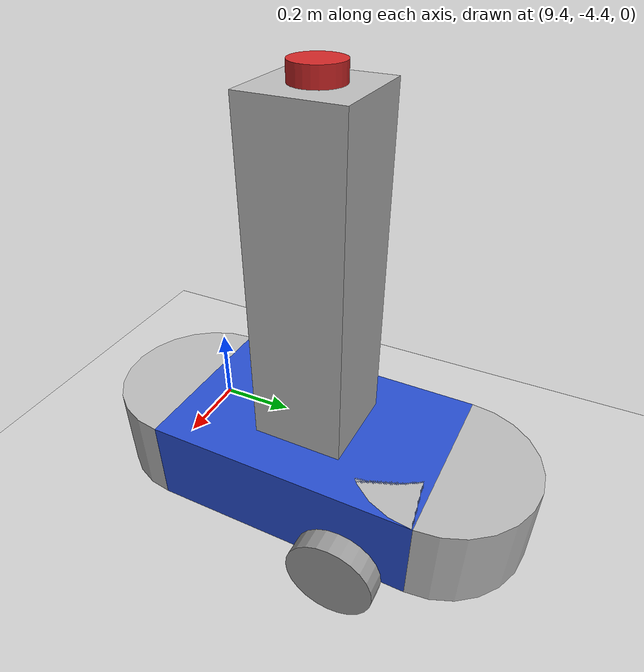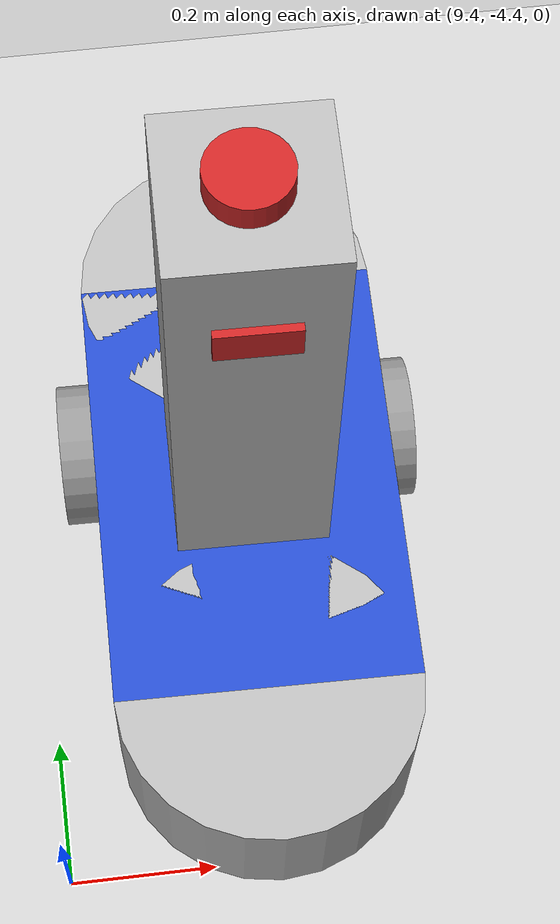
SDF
<sdf version="1.7">
 <world name="default">
  <model name="ground_plane">
   <static>1</static>
   <link name="link">
    <collision name="collision">
     <geometry><plane><normal>0 0 1</normal><size>100 100</size></plane></geometry>
     <surface>
      <contact><collide_bitmask>65535</collide_bitmask></contact>
      <friction><ode><mu>100</mu><mu2>50</mu2></ode></friction>
     </surface>
    </collision>
    <visual name="visual">
     <cast_shadows>0</cast_shadows>
     <geometry><plane><normal>0 0 1</normal><size>100 100</size></plane></geometry>
     <material>
      <script><uri>file://media/materials/scripts/gazebo.material</uri><name>Gazebo/Grey</name></script>
     </material>
    </visual>
   </link>
  </model>
  <model name="my_robot">
   <link name="base_footprint">
    <inertial>
     <pose>0.005384 0 0.360381 0 -0 0</pose>
     <mass>20.71</mass>
     <inertia>
      <ixx>2.48578</ixx>
      <ixy>0</ixy>
      <ixz>0.0260025</ixz>
      <iyy>2.85644</iyy>
      <iyz>0</iyz>
      <izz>2.3396</izz>
     </inertia>
    </inertial>
    <collision name="base_footprint_fixed_joint_lump__base_link_collision">
     <pose>0 0 0.2 0 -0 0</pose>
     <geometry><box><size>0.6 0.4 0.2</size></box></geometry>
    </collision>
    <collision name="base_footprint_fixed_joint_lump__back_bumper_link_collision_1">
     <pose>-0.3 0 0.2 0 -0 0</pose>
     <geometry><box><size>0.4 0.4 0.2</size></box></geometry>
    </collision>
    <collision name="base_footprint_fixed_joint_lump__caster_wheel_link_collision_2">
     <pose>0.2 0 0.05 0 -0 0</pose>
     <geometry><sphere><radius>0.05</radius></sphere></geometry>
     <surface><friction><ode><mu>0.1</mu><mu2>0.1</mu2></ode></friction></surface>
    </collision>
    <collision name="base_footprint_fixed_joint_lump__front_bumper_link_collision_3">
     <pose>0.3 0 0.2 0 -0 0</pose>
     <geometry><box><size>0.4 0.4 0.2</size></box></geometry>
    </collision>
    <collision name="base_footprint_fixed_joint_lump__tower_link_collision_4">
     <pose>0 0 1 0 -0 0</pose>
     <geometry><box><size>0.2 0.2 0.7</size></box></geometry>
    </collision>
    <collision name="base_footprint_fixed_joint_lump__camera_link_collision_5">
     <pose>0.105 0 0.86 0 -0 0</pose>
     <geometry><box><size>0.01 0.1 0.05</size></box></geometry>
    </collision>
    <collision name="base_footprint_fixed_joint_lump__lidar_link_collision_6">
     <pose>0 0 1.01 0 -0 0</pose>
     <geometry><cylinder><length>0.05</length><radius>0.05</radius></cylinder></geometry>
    </collision>
    <visual name="base_footprint_fixed_joint_lump__base_link_visual">
     <pose>0 0 0.2 0 -0 0</pose>
     <geometry><box><size>0.6 0.4 0.2</size></box></geometry>
     <material>
      <script><name>Gazebo/Blue</name><uri>file://media/materials/scripts/gazebo.material</uri></script>
     </material>
    </visual>
    <visual name="base_footprint_fixed_joint_lump__back_bumper_link_visual_1">
     <pose>-0.3 0 0.2 0 -0 0</pose>
     <geometry><cylinder><length>0.2</length><radius>0.2</radius></cylinder></geometry>
    </visual>
    <visual name="base_footprint_fixed_joint_lump__caster_wheel_link_visual_2">
     <pose>0.2 0 0.05 0 -0 0</pose>
     <geometry><sphere><radius>0.05</radius></sphere></geometry>
     <material>
      <script><name>Gazebo/Grey</name><uri>file://media/materials/scripts/gazebo.material</uri></script>
     </material>
    </visual>
    <visual name="base_footprint_fixed_joint_lump__front_bumper_link_visual_3">
     <pose>0.3 0 0.2 0 -0 0</pose>
     <geometry><cylinder><length>0.2</length><radius>0.2</radius></cylinder></geometry>
    </visual>
    <visual name="base_footprint_fixed_joint_lump__tower_link_visual_4">
     <pose>0 0 0.65 0 -0 0</pose>
     <geometry><box><size>0.2 0.2 0.7</size></box></geometry>
    </visual>
    <visual name="base_footprint_fixed_joint_lump__camera_link_visual_5">
     <pose>0.105 0 0.86 0 -0 0</pose>
     <geometry><box><size>0.01 0.1 0.05</size></box></geometry>
     <material>
      <script><name>Gazebo/Red</name><uri>file://media/materials/scripts/gazebo.material</uri></script>
     </material>
    </visual>
    <visual name="base_footprint_fixed_joint_lump__lidar_link_visual_6">
     <pose>0 0 1.01 0 -0 0</pose>
     <geometry><cylinder><length>0.05</length><radius>0.05</radius></cylinder></geometry>
     <material>
      <script><name>Gazebo/Red</name><uri>file://media/materials/scripts/gazebo.material</uri></script>
     </material>
    </visual>
    <sensor name="imu_sensor" type="imu">
     <always_on>1</always_on>
     <update_rate>100</update_rate>
     <visualize>1</visualize>
     <topic>__default_topic__</topic>
     <plugin name="imu_plugin" filename="libgazebo_ros_imu_sensor.so">
      <topicName>imu</topicName>
      <bodyName>imu_link</bodyName>
      <updateRateHZ>10.0</updateRateHZ>
      <gaussianNoise>0.0</gaussianNoise>
      <xyzOffset>0 0 0</xyzOffset>
      <rpyOffset>0 0 0</rpyOffset>
      <frameName>imu_link</frameName>
      <initialOrientationAsReference>0</initialOrientationAsReference>
     </plugin>
     <pose>0.1 0 0.15 0 -0 0</pose>
    </sensor>
    <sensor name="camera_sensor" type="camera">
     <visualize>1</visualize>
     <update_rate>10</update_rate>
     <plugin name="camera_controller" filename="libgazebo_ros_camera.so">
      <frame_name>camera_link_optical</frame_name>
     </plugin>
     <pose>0.105 0 0.86 0 -0 0</pose>
     <camera>
      <horizontal_fov>1.047</horizontal_fov>
      <image><width>320</width><height>240</height></image>
      <clip><near>0.1</near><far>100</far></clip>
     </camera>
    </sensor>
    <sensor name="laser" type="ray">
     <visualize>1</visualize>
     <update_rate>10</update_rate>
     <ray>
      <scan>
       <horizontal>
        <samples>360</samples>
        <min_angle>-3.14</min_angle>
        <max_angle>3.14</max_angle>
        <resolution>1</resolution>
       </horizontal>
       <vertical><samples>1</samples><min_angle>0</min_angle><max_angle>0</max_angle></vertical>
      </scan>
      <range><min>0.3</min><max>12</max></range>
     </ray>
     <plugin name="laser_controller" filename="libgazebo_ros_ray_sensor.so">
      <ros><argument>--remap ~/out:=scan</argument></ros>
      <output_type>sensor_msgs/LaserScan</output_type>
      <frame_name>lidar_link</frame_name>
     </plugin>
     <pose>0 0 1.01 0 -0 0</pose>
    </sensor>
   </link>
   <joint name="base_left_wheel_joint" type="revolute">
    <pose relative_to="base_footprint">-0.15 0.225 0.1 0 -0 0</pose>
    <parent>base_footprint</parent>
    <child>left_wheel_link</child>
    <axis>
     <xyz>0 1 0</xyz>
     <limit><lower>-1e+16</lower><upper>1e+16</upper></limit>
     <dynamics><spring_reference>0</spring_reference><spring_stiffness>0</spring_stiffness></dynamics>
    </axis>
   </joint>
   <link name="left_wheel_link">
    <pose relative_to="base_left_wheel_joint">0 0 0 0 -0 0</pose>
    <inertial>
     <pose>0 0 0 1.5708 -0 0</pose>
     <mass>1</mass>
     <inertia><ixx>0.0108333</ixx><ixy>0</ixy><ixz>0</ixz><iyy>0.0108333</iyy><iyz>0</iyz><izz>0.02</izz></inertia>
    </inertial>
    <collision name="left_wheel_link_collision">
     <pose>0 0 0 1.5708 -0 0</pose>
     <geometry><cylinder><length>0.05</length><radius>0.1</radius></cylinder></geometry>
    </collision>
    <visual name="left_wheel_link_visual">
     <pose>0 0 0 1.5708 -0 0</pose>
     <geometry><cylinder><length>0.05</length><radius>0.1</radius></cylinder></geometry>
     <material>
      <script><name>Gazebo/Grey</name><uri>file://media/materials/scripts/gazebo.material</uri></script>
     </material>
    </visual>
   </link>
   <joint name="base_right_wheel_joint" type="revolute">
    <pose relative_to="base_footprint">-0.15 -0.225 0.1 0 -0 0</pose>
    <parent>base_footprint</parent>
    <child>right_wheel_link</child>
    <axis>
     <xyz>0 1 0</xyz>
     <limit><lower>-1e+16</lower><upper>1e+16</upper></limit>
     <dynamics><spring_reference>0</spring_reference><spring_stiffness>0</spring_stiffness></dynamics>
    </axis>
   </joint>
   <link name="right_wheel_link">
    <pose relative_to="base_right_wheel_joint">0 0 0 0 -0 0</pose>
    <inertial>
     <pose>0 0 0 1.5708 -0 0</pose>
     <mass>1</mass>
     <inertia><ixx>0.0108333</ixx><ixy>0</ixy><ixz>0</ixz><iyy>0.0108333</iyy><iyz>0</iyz><izz>0.02</izz></inertia>
    </inertial>
    <collision name="right_wheel_link_collision">
     <pose>0 0 0 1.5708 -0 0</pose>
     <geometry><cylinder><length>0.05</length><radius>0.1</radius></cylinder></geometry>
    </collision>
    <visual name="right_wheel_link_visual">
     <pose>0 0 0 1.5708 -0 0</pose>
     <geometry><cylinder><length>0.05</length><radius>0.1</radius></cylinder></geometry>
     <material>
      <script><name>Gazebo/Grey</name><uri>file://media/materials/scripts/gazebo.material</uri></script>
     </material>
    </visual>
   </link>
   <static>0</static>
   <plugin name="diff_drive_controller" filename="libgazebo_ros_diff_drive.so">
    <update_rate>50</update_rate>
    <left_joint>base_left_wheel_joint</left_joint>
    <right_joint>base_right_wheel_joint</right_joint>
    <wheel_separation>0.45</wheel_separation>
    <wheel_diameter>0.2</wheel_diameter>
    <publish_odom>1</publish_odom>
    <publish_odom_tf>1</publish_odom_tf>
    <publish_wheel_tf>1</publish_wheel_tf>
    <odometry_topic>odom</odometry_topic>
    <odometry_frame>odom</odometry_frame>
    <robot_base_frame>base_footprint</robot_base_frame>
   </plugin>
   <pose>9.69254 -3.95325 0 1e-06 -4e-06 -1.5875</pose>
  </model>
 </world>
</sdf>
